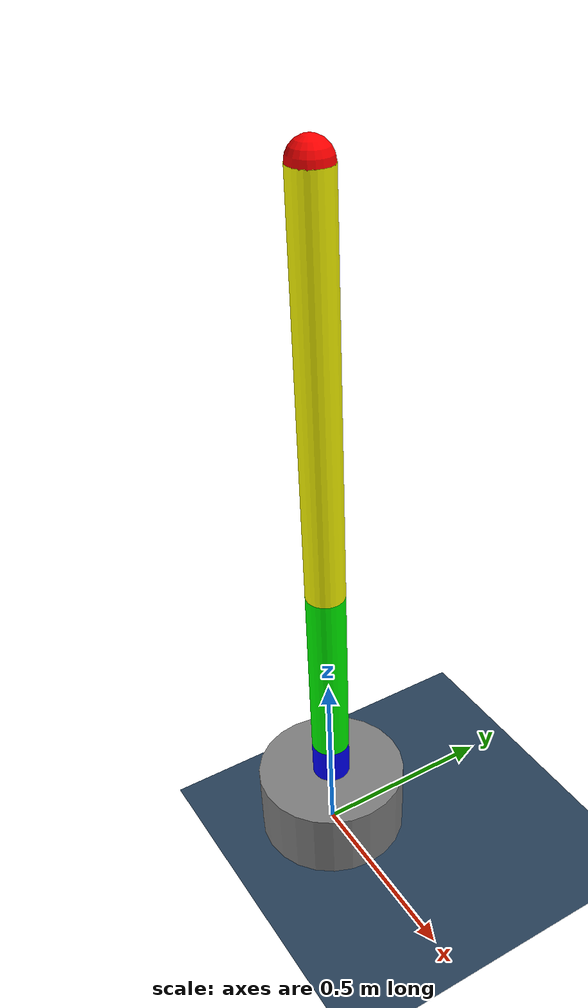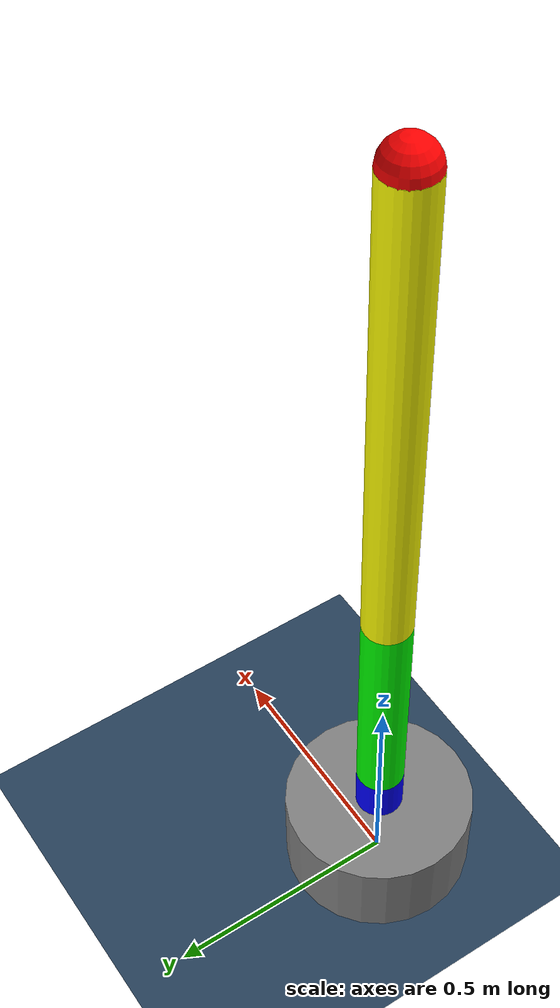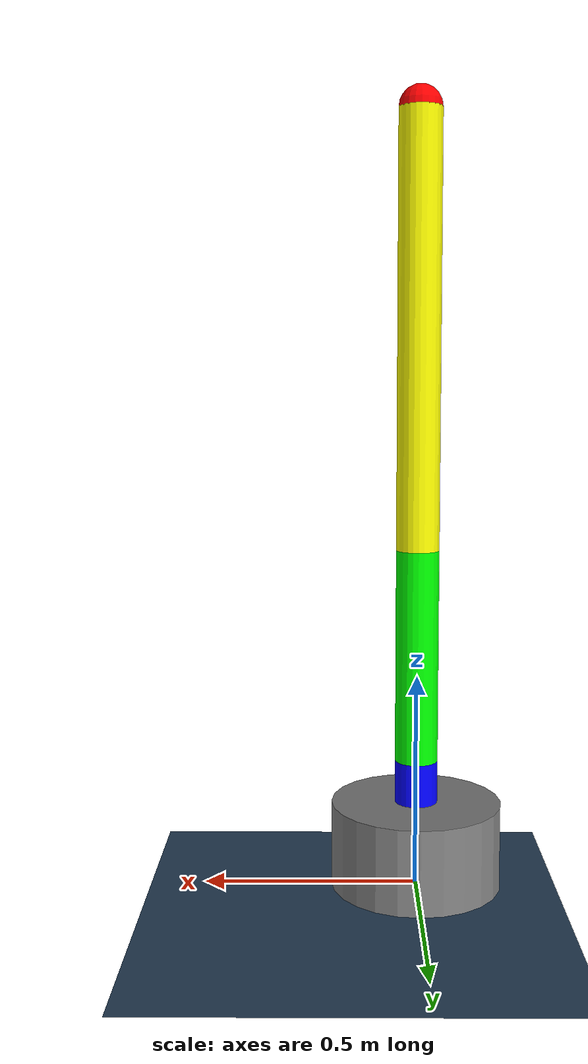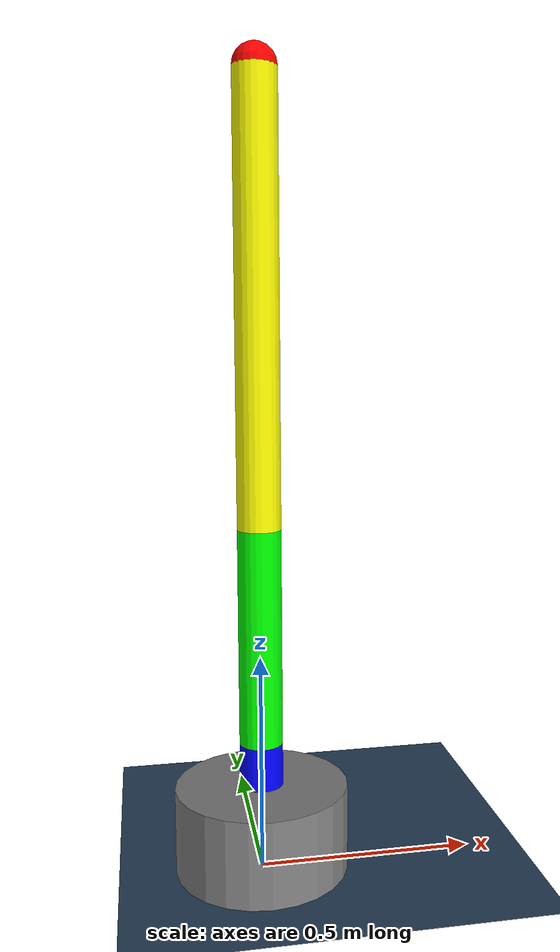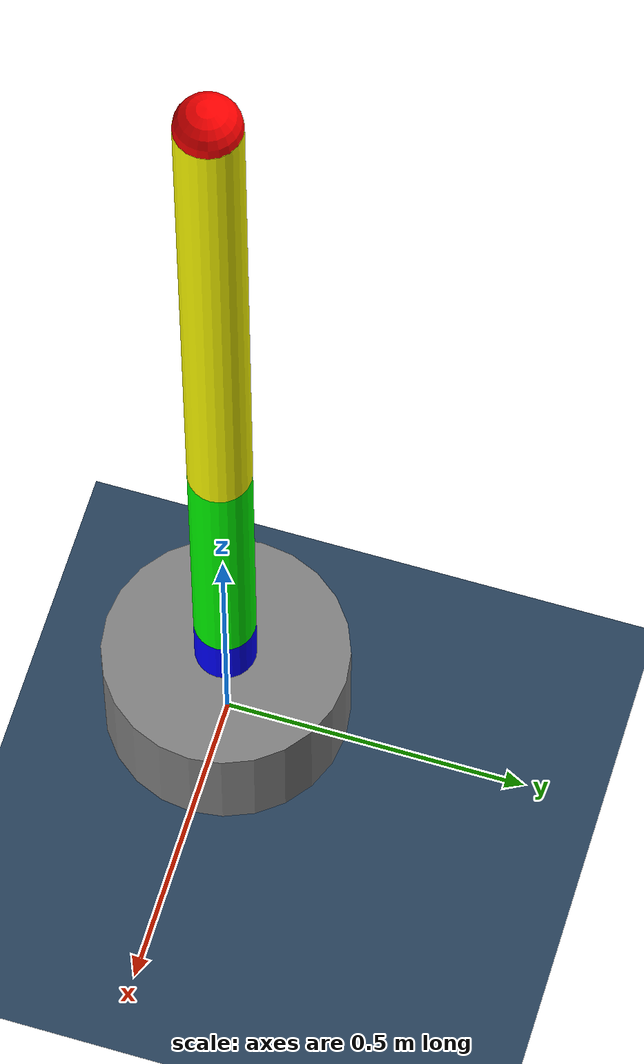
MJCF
<mujoco model="arm2link">
  <!-- Mujoco Options -->
  <compiler angle="radian" meshdir="meshes" autolimits="true" />
  <option cone="elliptic" impratio="100" />

  <!-- Macros -->
  <default>
    <default class="arm">
      <geom friction="1.0" margin="0.001" condim="1" />
      <joint axis="0 1 0" damping="0.1" armature="0.01" frictionloss="0.2" range="-3.1415 3.1415"/>
      <motor ctrlrange="-30 30"/>
      <default class="visual">
        <geom type="mesh" contype="0" conaffinity="0" group="2"/>
      </default>
      <default class="collision">
        <geom group="2"/>
      </default>
    </default>
  </default>

  <!-- Default Configuration -->
  <keyframe>
    <key name="0" qpos="0 0" />
  </keyframe>

  <!-- Model Descripton -->
  <worldbody>
    <!-- Light and ground -->
    <light pos="0 0 1.5" dir="0 0 -1" directional="true"/>
    <geom name="floor" size="0 0 0.05" type="plane" material="groundplane"/>

    <!-- Robot -->
    <body name="base_link" pos="0 0 0.1" childclass="arm">
      <geom type="cylinder" size="0.2 0.1" pos="0 0 0" class="visual" />
      <geom type="cylinder" size="0.05" fromto="0 0 0.1 0 0 0.2" rgba="0 0 1 1" class="visual" />

      <body name="link_1" pos="0 0 0.2">
        <joint name="joint_1" axis="0 1 0"/>
        <geom type="cylinder" size="0.05" fromto="0 0 0 0 0 0.5" rgba="0 1 0 1" class="visual" />
        <inertial pos="0 0 0.25" mass="0.5" diaginertia="0.01 0.01 0.0007" />

        <body name="link_2" pos="0 0 0.5">
          <joint name="joint_2" axis="0 1 0"/>
          <geom type="cylinder" size="0.05" fromto="0 0 0 0 0 1" rgba="1 1 0 1" class="collision" />
          <inertial pos="0 0 0.5" mass="1" diaginertia="0.08 0.08 0.0013" />

          <body name="end_effector" pos="0 0 1">
            <geom type="sphere" size="0.05" rgba="1 0 0 1" priority="1" condim="6" friction="1.0 0.02 0.01" class="collision"/>
          </body>
        </body>
      </body>
    </body>
  </worldbody>

  <actuator>
    <motor name="joint_1_motor" joint="joint_1" class="arm"/>
    <motor name="joint_2_motor" joint="joint_2" class="arm"/>
  </actuator>

  <sensor>
    <jointpos name="joint_1_pos" joint="joint_1" />
    <jointpos name="joint_2_pos" joint="joint_2" />

    <jointvel name="joint_1_vel" joint="joint_1" />
    <jointvel name="joint_2_vel" joint="joint_2" />

    <jointactuatorfrc name="joint_1_torque" joint="joint_1" />
    <jointactuatorfrc name="joint_2_torque" joint="joint_2" />

    <touch name="end_effector_touch" site="end_effector_site" />
  </sensor>

  <asset>
    <material name="metal" rgba=".9 .95 .95 1" />
    <material name="black" rgba="0 0 0 1" />
    <material name="white" rgba="1 1 1 1" />
    <material name="gray" rgba="0.671705 0.692426 0.774270 1" />
    <texture type="skybox" builtin="gradient" rgb1="0.3 0.5 0.7" rgb2="0 0 0" width="512" height="3072"/>
    <texture type="2d" name="groundplane" builtin="checker" mark="edge" rgb1="0.2 0.3 0.4" rgb2="0.1 0.2 0.3" markrgb="0.8 0.8 0.8" width="300" height="300"/>
    <material name="groundplane" texture="groundplane" texuniform="true" texrepeat="5 5" reflectance="0.2"/>
  </asset>

  <visual>
    <global azimuth="-90" elevation="-20"/>
    <headlight diffuse="0.6 0.6 0.6" ambient="0.3 0.3 0.3" specular="0 0 0"/>
    <rgba haze="0.15 0.25 0.35 1"/>
  </visual>

</mujoco>
